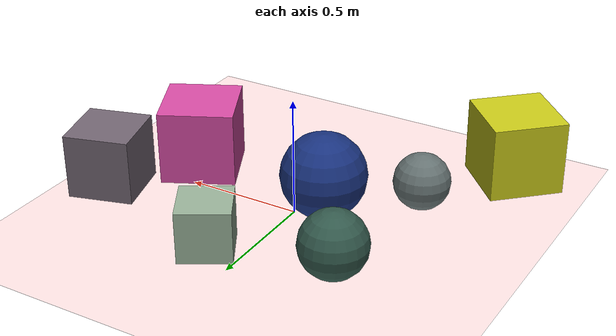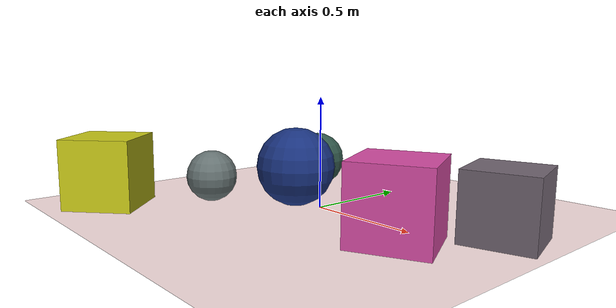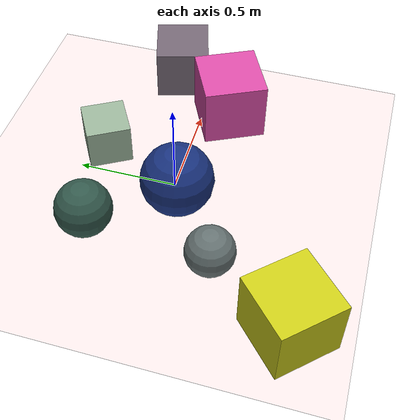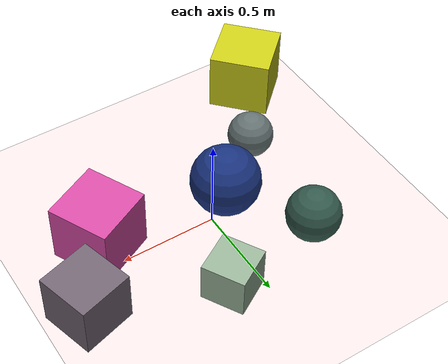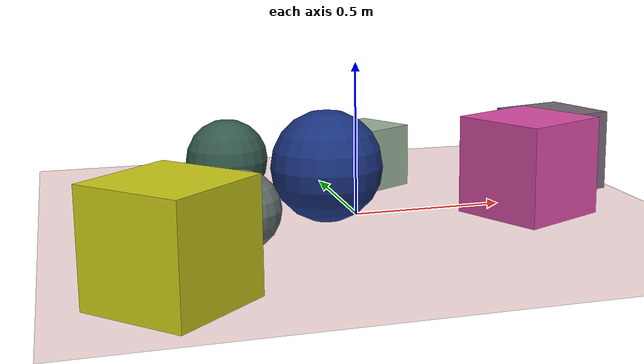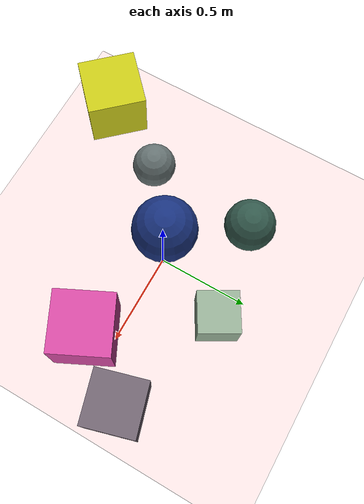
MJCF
<mujoco>
   <asset>
<texture type="skybox" builtin="gradient" rgb1="0.3 0.2 0.5" rgb2="0.1 0.3 0.2" width="256" height="256"/>
<texture name="checker_0" builtin="checker" rgb1="1.0 0.5 0.9" rgb2="0.7 0.1 0.4" width="200" height="200"/>
<texture name="gradient_1" builtin="gradient" rgb1="0.2 0.0 0.8" rgb2="0.6 0.9 0.1" width="200" height="200"/>
<texture name="gradient_2" builtin="gradient" rgb1="0.2 0.4 0.0" rgb2="0.2 0.3 0.6" width="200" height="200"/>
<texture name="flat_3" builtin="flat" rgb1="0.8 0.8 0.1" rgb2="0.8 0.8 0.1"  width="200" height="200"/>
<texture name="flat_4" builtin="flat" rgb1="0.1 0.2 0.5" rgb2="0.1 0.2 0.5"  width="200" height="200"/>
<texture name="checker_5" builtin="checker" rgb1="0.4 0.7 0.9" rgb2="0.8 0.7 0.3" width="200" height="200"/>
<texture name="checker_6" builtin="checker" rgb1="0.8 0.7 0.5" rgb2="0.1 0.1 0.4" width="200" height="200"/><material name="checker_0_mat" reflectance="0" texrepeat="3 3" texture="checker_0" texuniform="false" />
<material name="gradient_1_mat" reflectance="0" texture="gradient_1" texuniform="true"/>
<material name="gradient_2_mat" reflectance="0" texture="gradient_2" texuniform="true"/>
<material name="flat_3_mat" reflectance="0" texture="flat_3" texuniform="true"/>
<material name="flat_4_mat" reflectance="0" texture="flat_4" texuniform="true"/>
<material name="checker_5_mat" reflectance="0" texrepeat="10 10" texture="checker_5" texuniform="false" />
<material name="checker_6_mat" reflectance="0" texrepeat="5 5" texture="checker_6" texuniform="false" />
   </asset>

   <worldbody>
      <light diffuse=".9 .9 .9" pos="0 0 3" dir="0 0 -1"/>
     <geom type="plane" size="1 1 0.1" rgba="1.0 0.9 0.9 1"/>
<geom type="box" pos="0.55 -0.14 0.16" size="0.16 0.16 0.16" material="checker_0_mat" euler="0 0 26" />
<geom type="sphere" pos="-0.43 -0.3 0.12" size="0.12 0.12 0.12" material="gradient_1_mat" euler="0 0 64" />
<geom type="sphere" pos="-0.37 0.33 0.14" size="0.14 0.14 0.14" material="gradient_2_mat" euler="0 0 69" />
<geom type="box" pos="-0.67 -0.71 0.16" size="0.16 0.16 0.16" material="flat_3_mat" euler="0 0 43" />
<geom type="sphere" pos="-0.11 -0.05 0.18" size="0.18 0.18 0.18" material="flat_4_mat" euler="0 0 12" />
<geom type="box" pos="0.15 0.41 0.11" size="0.11 0.11 0.11" material="checker_5_mat" euler="0 0 30" />
<geom type="box" pos="0.79 0.19 0.14" size="0.14 0.14 0.14" material="checker_6_mat" euler="0 0 16" /><camera euler="60 0 180" fovy="60" name="camera1" pos="-0.2 -1.5 1"></camera>   </worldbody>
</mujoco>
